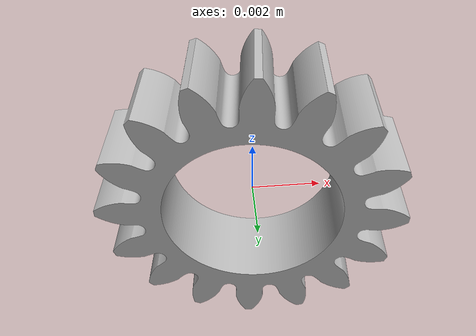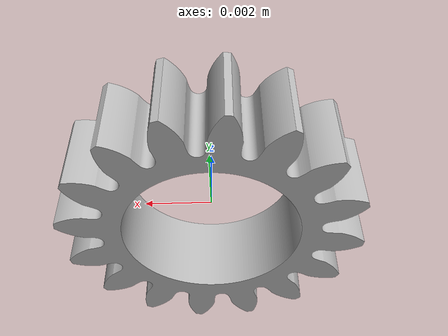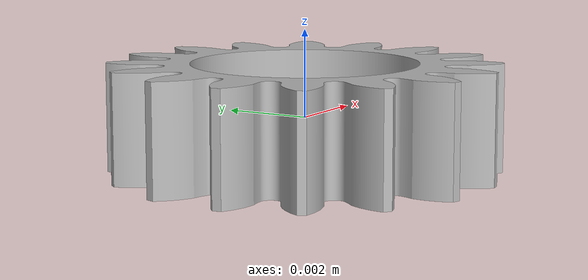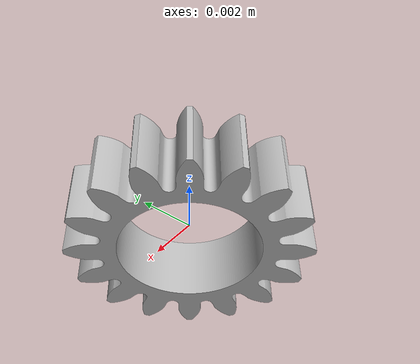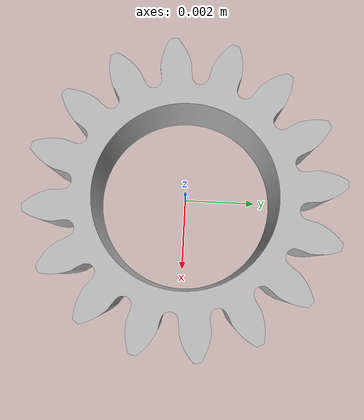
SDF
<?xml version="1.0" ?>
<sdf version="1.5">
  <model name="gear_1">
    <static>false</static>
    <link name="link">
      <collision name="collision">
        <geometry>
          <mesh>
            <scale>1 1 1</scale>
            <uri>model://Planetary/gear_1/gear_1.dae</uri>
          </mesh>
        </geometry>
      </collision>
      <visual name="visual">
        <geometry>
          <mesh>
            <scale>1 1 1</scale>
            <uri>model://Planetary/gear_1/gear_1.dae</uri>
          </mesh>
        </geometry>
      </visual>
    </link>
  </model>
</sdf>
